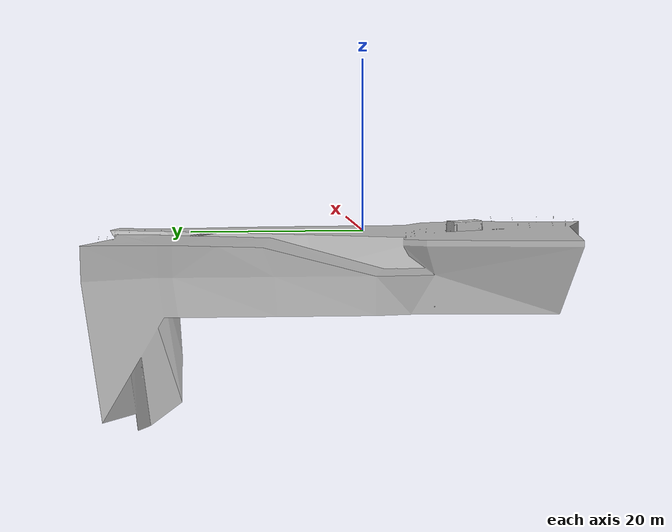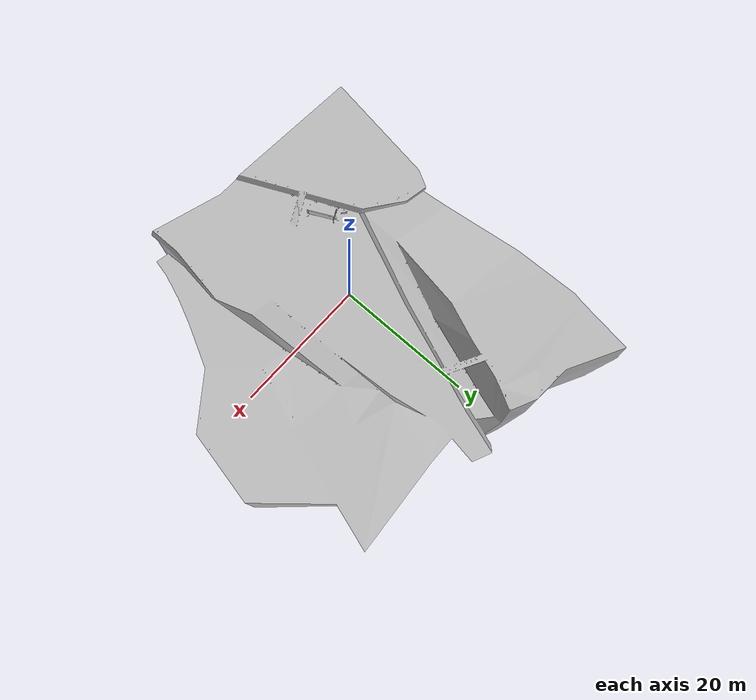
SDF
<?xml version="1.0" ?>
<sdf version='1.4'>
  <model name="space_ice">
      <static>1</static>
        <link name='link_1'>
            <visual name='visual'>
            <pose frame=''>0 0 0 0 0 0</pose>
            <geometry>
            <mesh>
                <uri>model://space_ice/meshes/space_ice.dae</uri>
                <scale>0.5 0.5 0.5</scale>
            </mesh>
            </geometry>
            <cast_shadows>0</cast_shadows>
            <transparency>0</transparency>
        </visual>

        <collision name='collision'>
            <laser_retro>0</laser_retro>
            <pose frame=''>0 0 0 0 0 0</pose>
            <geometry>
            <mesh>
                <uri>model://space_ice/meshes/space_ice.stl</uri>
                <scale>0.5 0.5 0.5</scale>
            </mesh>
            </geometry>
        </collision>
        </link>
  </model>
</sdf>
